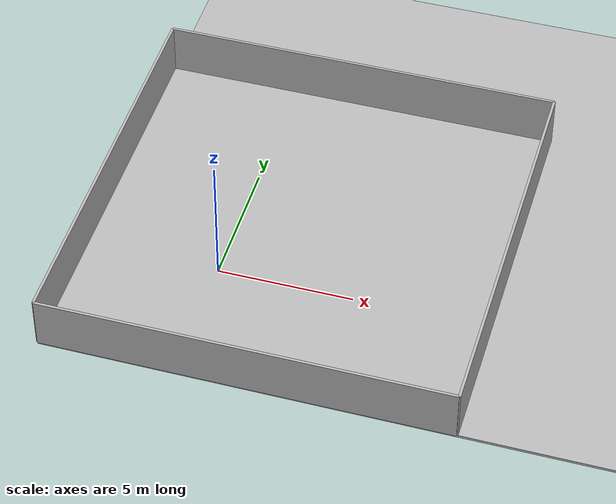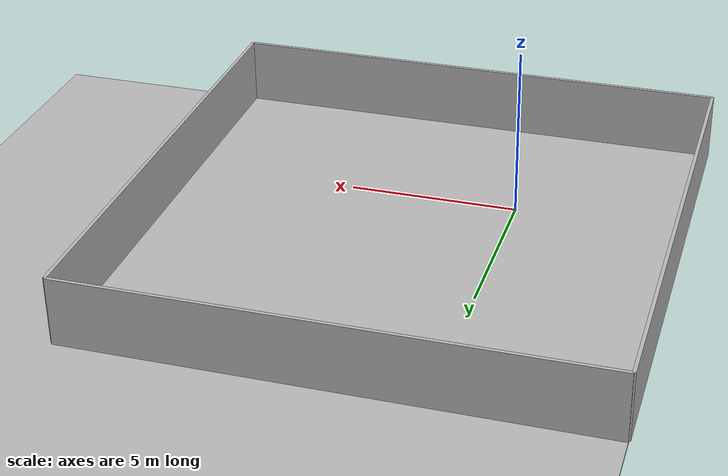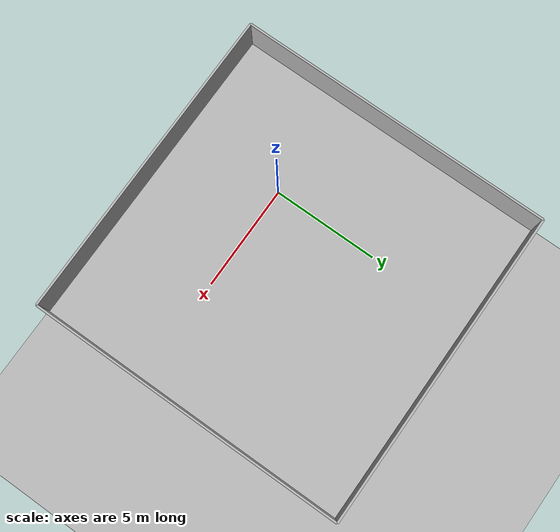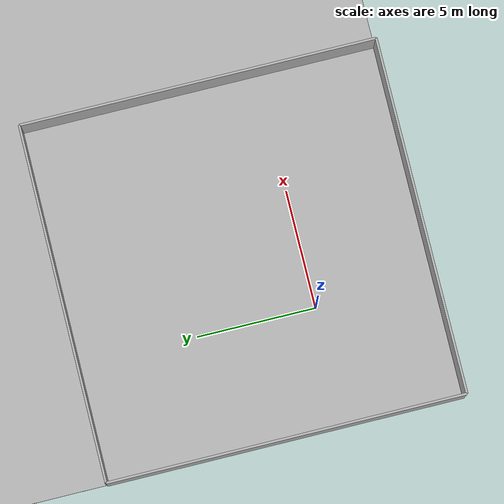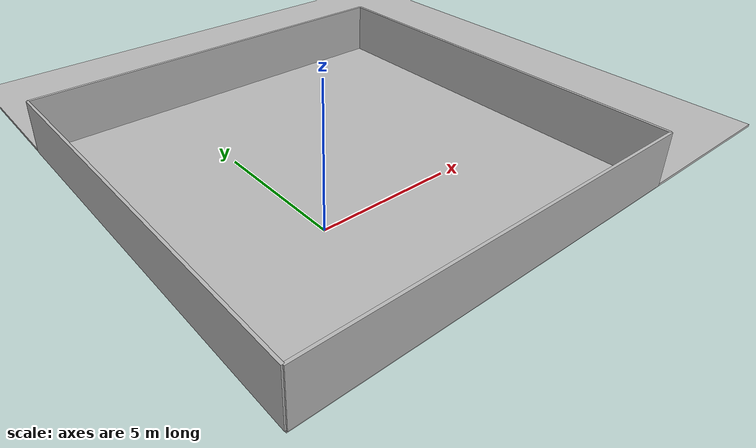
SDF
<?xml version='1.0' encoding='utf-8'?>
<sdf version="1.6">
  <world name="default">
    <include>
      <uri>model://sun</uri>
    </include>
    <model name="building_1f">
      <static>true</static>
      <link name="wall_01">
        <pose>2.5 -5.0 1.0 0 0 0.0</pose>
        <collision name="collision">
          <geometry>
            <box>
              <size>15.0 0.1 2.0</size>
            </box>
          </geometry>
        </collision>
        <visual name="visual">
          <geometry>
            <box>
              <size>15.0 0.1 2.0</size>
            </box>
          </geometry>
        </visual>
      </link>
      <link name="wall_02">
        <pose>10.0 2.5 1.0 0 0 1.5707963267948966</pose>
        <collision name="collision">
          <geometry>
            <box>
              <size>15.0 0.1 2.0</size>
            </box>
          </geometry>
        </collision>
        <visual name="visual">
          <geometry>
            <box>
              <size>15.0 0.1 2.0</size>
            </box>
          </geometry>
        </visual>
      </link>
      <link name="wall_03">
        <pose>2.5 10.0 1.0 0 0 3.141592653589793</pose>
        <collision name="collision">
          <geometry>
            <box>
              <size>15.0 0.1 2.0</size>
            </box>
          </geometry>
        </collision>
        <visual name="visual">
          <geometry>
            <box>
              <size>15.0 0.1 2.0</size>
            </box>
          </geometry>
        </visual>
      </link>
      <link name="wall_04">
        <pose>-5.0 2.5 1.0 0 0 -1.5707963267948966</pose>
        <collision name="collision">
          <geometry>
            <box>
              <size>15.0 0.1 2.0</size>
            </box>
          </geometry>
        </collision>
        <visual name="visual">
          <geometry>
            <box>
              <size>15.0 0.1 2.0</size>
            </box>
          </geometry>
        </visual>
      </link>
      <link name="floor_01">
        <pose>47.5 47.5 -0.05 0 0 0</pose>
        <collision name="collision">
          <geometry>
            <box>
              <size>105.0 105.0 0.1</size>
            </box>
          </geometry>
        </collision>
        <visual name="visual">
          <geometry>
            <box>
              <size>105.0 105.0 0.1</size>
            </box>
          </geometry>
        </visual>
      </link>
      <gravity>0 0 -9.8</gravity>
    </model>
  </world>
</sdf>
